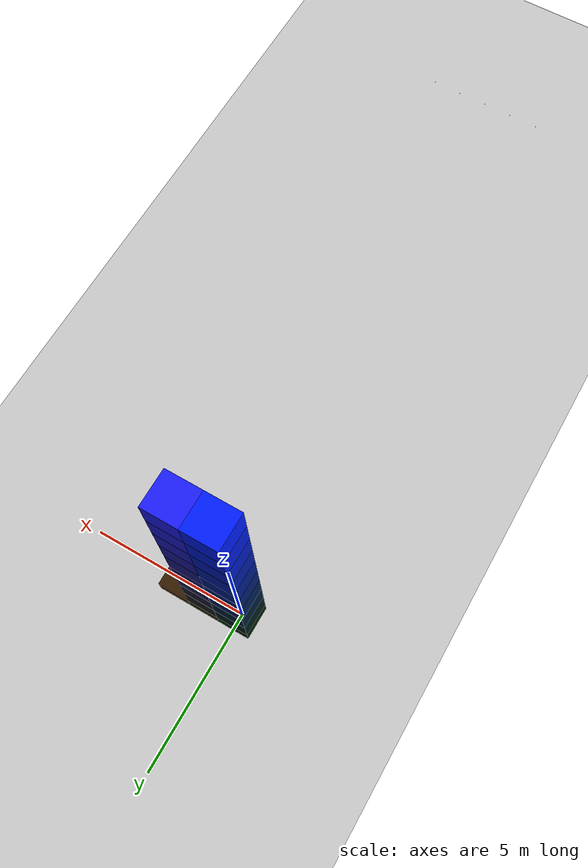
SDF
<sdf version="1.6">
 <world name="default">
  <model name="ground_plane">
   <static>true</static>
   <link name="link">
    <collision name="collision"><geometry><plane><normal>0 0 1</normal></plane></geometry></collision>
    <visual name="visual">
     <geometry><plane><normal>0 0 1</normal><size>100 100</size></plane></geometry>
     <material>
      <ambient>0.8 0.8 0.8 1</ambient>
      <diffuse>0.8 0.8 0.8 1</diffuse>
      <specular>0.8 0.8 0.8 1</specular>
     </material>
    </visual>
   </link>
  </model>
  <model name="camera_0">
   <static>true</static>
   <pose>0.0 -20 0 0 0 1.5707</pose>
   <link name="base_link">
    <visual name="camera_visual"><geometry><box><size>0.02 0.02 0.02</size></box></geometry></visual>
    <sensor name="camera_sensor_0" type="camera">
     <always_on>1</always_on>
     <update_rate>20</update_rate>
     <camera name="camera_front">
      <pose>0 0 0 0 -1.5707 1.5707</pose>
      <horizontal_fov>1.0472</horizontal_fov>
      <distortion><k1>0.0</k1><k2>0.0</k2><k3>0.0</k3><p1>0.0</p1><p2>0.0</p2><center>0.5 0.5</center></distortion>
      <image><width>1280</width><height>960</height><format>R8G8B8</format></image>
      <clip><near>0.01</near><far>300</far></clip>
      <noise><type>gaussian</type><mean>0</mean><stddev>0.007</stddev></noise>
     </camera>
    </sensor>
   </link>
  </model>
  <model name="camera_1">
   <static>true</static>
   <pose>1.0 -20 0 0 0 1.5707</pose>
   <link name="base_link">
    <visual name="camera_visual"><geometry><box><size>0.02 0.02 0.02</size></box></geometry></visual>
    <sensor name="camera_sensor_1" type="camera">
     <always_on>1</always_on>
     <update_rate>20</update_rate>
     <camera name="camera_front">
      <pose>0 0 0 0 -1.5707 1.5707</pose>
      <horizontal_fov>1.0472</horizontal_fov>
      <distortion><k1>0.0</k1><k2>0.0</k2><k3>0.0</k3><p1>0.0</p1><p2>0.0</p2><center>0.5 0.5</center></distortion>
      <image><width>1280</width><height>960</height><format>R8G8B8</format></image>
      <clip><near>0.01</near><far>300</far></clip>
      <noise><type>gaussian</type><mean>0</mean><stddev>0.007</stddev></noise>
     </camera>
    </sensor>
   </link>
  </model>
  <model name="camera_2">
   <static>true</static>
   <pose>2.0 -20 0 0 0 1.5707</pose>
   <link name="base_link">
    <visual name="camera_visual"><geometry><box><size>0.02 0.02 0.02</size></box></geometry></visual>
    <sensor name="camera_sensor_2" type="camera">
     <always_on>1</always_on>
     <update_rate>20</update_rate>
     <camera name="camera_front">
      <pose>0 0 0 0 -1.5707 1.5707</pose>
      <horizontal_fov>1.0472</horizontal_fov>
      <distortion><k1>0.0</k1><k2>0.0</k2><k3>0.0</k3><p1>0.0</p1><p2>0.0</p2><center>0.5 0.5</center></distortion>
      <image><width>1280</width><height>960</height><format>R8G8B8</format></image>
      <clip><near>0.01</near><far>300</far></clip>
      <noise><type>gaussian</type><mean>0</mean><stddev>0.007</stddev></noise>
     </camera>
    </sensor>
   </link>
  </model>
  <model name="camera_3">
   <static>true</static>
   <pose>3.0 -20 0 0 0 1.5707</pose>
   <link name="base_link">
    <visual name="camera_visual"><geometry><box><size>0.02 0.02 0.02</size></box></geometry></visual>
    <sensor name="camera_sensor_3" type="camera">
     <always_on>1</always_on>
     <update_rate>20</update_rate>
     <camera name="camera_front">
      <pose>0 0 0 0 -1.5707 1.5707</pose>
      <horizontal_fov>1.0472</horizontal_fov>
      <distortion><k1>0.0</k1><k2>0.0</k2><k3>0.0</k3><p1>0.0</p1><p2>0.0</p2><center>0.5 0.5</center></distortion>
      <image><width>1280</width><height>960</height><format>R8G8B8</format></image>
      <clip><near>0.01</near><far>300</far></clip>
      <noise><type>gaussian</type><mean>0</mean><stddev>0.007</stddev></noise>
     </camera>
    </sensor>
   </link>
  </model>
  <model name="camera_4">
   <static>true</static>
   <pose>4.0 -20 0 0 0 1.5707</pose>
   <link name="base_link">
    <visual name="camera_visual"><geometry><box><size>0.02 0.02 0.02</size></box></geometry></visual>
    <sensor name="camera_sensor_4" type="camera">
     <always_on>1</always_on>
     <update_rate>20</update_rate>
     <camera name="camera_front">
      <pose>0 0 0 0 -1.5707 1.5707</pose>
      <horizontal_fov>1.0472</horizontal_fov>
      <distortion><k1>0.0</k1><k2>0.0</k2><k3>0.0</k3><p1>0.0</p1><p2>0.0</p2><center>0.5 0.5</center></distortion>
      <image><width>1280</width><height>960</height><format>R8G8B8</format></image>
      <clip><near>0.01</near><far>300</far></clip>
      <noise><type>gaussian</type><mean>0</mean><stddev>0.007</stddev></noise>
     </camera>
    </sensor>
   </link>
  </model>
  <model name="model_0_1.0_0">
   <static>true</static>
   <link name="box_link">
    <inertial>
     <inertia><ixx>1</ixx><ixy>0</ixy><ixz>0</ixz><iyy>1</iyy><iyz>0</iyz><izz>1</izz></inertia>
     <mass>5.0</mass>
    </inertial>
    <collision name="box_collision"><geometry><box><size>1 1 1</size></box></geometry></collision>
    <visual name="box_visual">
     <geometry><box><size>1 1 1</size></box></geometry>
     <material>
      <ambient>0.0
              0.1111111111111111
              0.0
              1</ambient>
      <diffuse>0.0
              0.1111111111111111
              0.0
              1</diffuse>
      <specular>0.0
              0.1111111111111111
              0.0
              1</specular>
     </material>
    </visual>
   </link>
  </model>
  <model name="model_0_1.0_1">
   <static>true</static>
   <pose>0.0
        0.0
        1.0
        0.0
        0.0
        0.0</pose>
   <link name="box_link">
    <inertial>
     <inertia><ixx>1</ixx><ixy>0</ixy><ixz>0</ixz><iyy>1</iyy><iyz>0</iyz><izz>1</izz></inertia>
     <mass>5.0</mass>
    </inertial>
    <collision name="box_collision"><geometry><box><size>1 1 1</size></box></geometry></collision>
    <visual name="box_visual">
     <geometry><box><size>1 1 1</size></box></geometry>
     <material>
      <ambient>0.0
              0.1111111111111111
              0.1111111111111111
              1</ambient>
      <diffuse>0.0
              0.1111111111111111
              0.1111111111111111
              1</diffuse>
      <specular>0.0
              0.1111111111111111
              0.1111111111111111
              1</specular>
     </material>
    </visual>
   </link>
  </model>
  <model name="model_0_1.0_2">
   <static>true</static>
   <pose>0.0
        0.0
        2.0
        0.0
        0.0
        0.0</pose>
   <link name="box_link">
    <inertial>
     <inertia><ixx>1</ixx><ixy>0</ixy><ixz>0</ixz><iyy>1</iyy><iyz>0</iyz><izz>1</izz></inertia>
     <mass>5.0</mass>
    </inertial>
    <collision name="box_collision"><geometry><box><size>1 1 1</size></box></geometry></collision>
    <visual name="box_visual">
     <geometry><box><size>1 1 1</size></box></geometry>
     <material>
      <ambient>0.0
              0.1111111111111111
              0.2222222222222222
              1</ambient>
      <diffuse>0.0
              0.1111111111111111
              0.2222222222222222
              1</diffuse>
      <specular>0.0
              0.1111111111111111
              0.2222222222222222
              1</specular>
     </material>
    </visual>
   </link>
  </model>
  <model name="model_0_1.0_3">
   <static>true</static>
   <pose>0.0
        0.0
        3.0
        0.0
        0.0
        0.0</pose>
   <link name="box_link">
    <inertial>
     <inertia><ixx>1</ixx><ixy>0</ixy><ixz>0</ixz><iyy>1</iyy><iyz>0</iyz><izz>1</izz></inertia>
     <mass>5.0</mass>
    </inertial>
    <collision name="box_collision"><geometry><box><size>1 1 1</size></box></geometry></collision>
    <visual name="box_visual">
     <geometry><box><size>1 1 1</size></box></geometry>
     <material>
      <ambient>0.0
              0.1111111111111111
              0.3333333333333333
              1</ambient>
      <diffuse>0.0
              0.1111111111111111
              0.3333333333333333
              1</diffuse>
      <specular>0.0
              0.1111111111111111
              0.3333333333333333
              1</specular>
     </material>
    </visual>
   </link>
  </model>
  <model name="model_0_1.0_4">
   <static>true</static>
   <pose>0.0
        0.0
        4.0
        0.0
        0.0
        0.0</pose>
   <link name="box_link">
    <inertial>
     <inertia><ixx>1</ixx><ixy>0</ixy><ixz>0</ixz><iyy>1</iyy><iyz>0</iyz><izz>1</izz></inertia>
     <mass>5.0</mass>
    </inertial>
    <collision name="box_collision"><geometry><box><size>1 1 1</size></box></geometry></collision>
    <visual name="box_visual">
     <geometry><box><size>1 1 1</size></box></geometry>
     <material>
      <ambient>0.0
              0.1111111111111111
              0.4444444444444444
              1</ambient>
      <diffuse>0.0
              0.1111111111111111
              0.4444444444444444
              1</diffuse>
      <specular>0.0
              0.1111111111111111
              0.4444444444444444
              1</specular>
     </material>
    </visual>
   </link>
  </model>
  <model name="model_0_1.0_5">
   <static>true</static>
   <pose>0.0
        0.0
        5.0
        0.0
        0.0
        0.0</pose>
   <link name="box_link">
    <inertial>
     <inertia><ixx>1</ixx><ixy>0</ixy><ixz>0</ixz><iyy>1</iyy><iyz>0</iyz><izz>1</izz></inertia>
     <mass>5.0</mass>
    </inertial>
    <collision name="box_collision"><geometry><box><size>1 1 1</size></box></geometry></collision>
    <visual name="box_visual">
     <geometry><box><size>1 1 1</size></box></geometry>
     <material>
      <ambient>0.0
              0.1111111111111111
              0.5555555555555556
              1</ambient>
      <diffuse>0.0
              0.1111111111111111
              0.5555555555555556
              1</diffuse>
      <specular>0.0
              0.1111111111111111
              0.5555555555555556
              1</specular>
     </material>
    </visual>
   </link>
  </model>
  <model name="model_0_1.0_6">
   <static>true</static>
   <pose>0.0
        0.0
        6.0
        0.0
        0.0
        0.0</pose>
   <link name="box_link">
    <inertial>
     <inertia><ixx>1</ixx><ixy>0</ixy><ixz>0</ixz><iyy>1</iyy><iyz>0</iyz><izz>1</izz></inertia>
     <mass>5.0</mass>
    </inertial>
    <collision name="box_collision"><geometry><box><size>1 1 1</size></box></geometry></collision>
    <visual name="box_visual">
     <geometry><box><size>1 1 1</size></box></geometry>
     <material>
      <ambient>0.0
              0.1111111111111111
              0.6666666666666666
              1</ambient>
      <diffuse>0.0
              0.1111111111111111
              0.6666666666666666
              1</diffuse>
      <specular>0.0
              0.1111111111111111
              0.6666666666666666
              1</specular>
     </material>
    </visual>
   </link>
  </model>
  <model name="model_0_1.0_7">
   <static>true</static>
   <pose>0.0
        0.0
        7.0
        0.0
        0.0
        0.0</pose>
   <link name="box_link">
    <inertial>
     <inertia><ixx>1</ixx><ixy>0</ixy><ixz>0</ixz><iyy>1</iyy><iyz>0</iyz><izz>1</izz></inertia>
     <mass>5.0</mass>
    </inertial>
    <collision name="box_collision"><geometry><box><size>1 1 1</size></box></geometry></collision>
    <visual name="box_visual">
     <geometry><box><size>1 1 1</size></box></geometry>
     <material>
      <ambient>0.0
              0.1111111111111111
              0.7777777777777778
              1</ambient>
      <diffuse>0.0
              0.1111111111111111
              0.7777777777777778
              1</diffuse>
      <specular>0.0
              0.1111111111111111
              0.7777777777777778
              1</specular>
     </material>
    </visual>
   </link>
  </model>
  <model name="model_0_1.0_8">
   <static>true</static>
   <pose>0.0
        0.0
        8.0
        0.0
        0.0
        0.0</pose>
   <link name="box_link">
    <inertial>
     <inertia><ixx>1</ixx><ixy>0</ixy><ixz>0</ixz><iyy>1</iyy><iyz>0</iyz><izz>1</izz></inertia>
     <mass>5.0</mass>
    </inertial>
    <collision name="box_collision"><geometry><box><size>1 1 1</size></box></geometry></collision>
    <visual name="box_visual">
     <geometry><box><size>1 1 1</size></box></geometry>
     <material>
      <ambient>0.0
              0.1111111111111111
              0.8888888888888888
              1</ambient>
      <diffuse>0.0
              0.1111111111111111
              0.8888888888888888
              1</diffuse>
      <specular>0.0
              0.1111111111111111
              0.8888888888888888
              1</specular>
     </material>
    </visual>
   </link>
  </model>
  <model name="model_0_1.0_9">
   <static>true</static>
   <pose>0.0
        0.0
        9.0
        0.0
        0.0
        0.0</pose>
   <link name="box_link">
    <inertial>
     <inertia><ixx>1</ixx><ixy>0</ixy><ixz>0</ixz><iyy>1</iyy><iyz>0</iyz><izz>1</izz></inertia>
     <mass>5.0</mass>
    </inertial>
    <collision name="box_collision"><geometry><box><size>1 1 1</size></box></geometry></collision>
    <visual name="box_visual">
     <geometry><box><size>1 1 1</size></box></geometry>
     <material>
      <ambient>0.0
              0.1111111111111111
              1.0
              1</ambient>
      <diffuse>0.0
              0.1111111111111111
              1.0
              1</diffuse>
      <specular>0.0
              0.1111111111111111
              1.0
              1</specular>
     </material>
    </visual>
   </link>
  </model>
  <model name="model_1_1.0_0">
   <static>true</static>
   <pose>1.0
        0.0
        0.0
        0.0
        0.0
        0.0</pose>
   <link name="box_link">
    <inertial>
     <inertia><ixx>1</ixx><ixy>0</ixy><ixz>0</ixz><iyy>1</iyy><iyz>0</iyz><izz>1</izz></inertia>
     <mass>5.0</mass>
    </inertial>
    <collision name="box_collision"><geometry><box><size>1 1 1</size></box></geometry></collision>
    <visual name="box_visual">
     <geometry><box><size>1 1 1</size></box></geometry>
     <material>
      <ambient>0.1111111111111111
              0.1111111111111111
              0.0
              1</ambient>
      <diffuse>0.1111111111111111
              0.1111111111111111
              0.0
              1</diffuse>
      <specular>0.1111111111111111
              0.1111111111111111
              0.0
              1</specular>
     </material>
    </visual>
   </link>
  </model>
  <model name="model_1_1.0_1">
   <static>true</static>
   <pose>1.0
        0.0
        1.0
        0.0
        0.0
        0.0</pose>
   <link name="box_link">
    <inertial>
     <inertia><ixx>1</ixx><ixy>0</ixy><ixz>0</ixz><iyy>1</iyy><iyz>0</iyz><izz>1</izz></inertia>
     <mass>5.0</mass>
    </inertial>
    <collision name="box_collision"><geometry><box><size>1 1 1</size></box></geometry></collision>
    <visual name="box_visual">
     <geometry><box><size>1 1 1</size></box></geometry>
     <material>
      <ambient>0.1111111111111111
              0.1111111111111111
              0.1111111111111111
              1</ambient>
      <diffuse>0.1111111111111111
              0.1111111111111111
              0.1111111111111111
              1</diffuse>
      <specular>0.1111111111111111
              0.1111111111111111
              0.1111111111111111
              1</specular>
     </material>
    </visual>
   </link>
  </model>
  <model name="model_1_1.0_2">
   <static>true</static>
   <pose>1.0
        0.0
        2.0
        0.0
        0.0
        0.0</pose>
   <link name="box_link">
    <inertial>
     <inertia><ixx>1</ixx><ixy>0</ixy><ixz>0</ixz><iyy>1</iyy><iyz>0</iyz><izz>1</izz></inertia>
     <mass>5.0</mass>
    </inertial>
    <collision name="box_collision"><geometry><box><size>1 1 1</size></box></geometry></collision>
    <visual name="box_visual">
     <geometry><box><size>1 1 1</size></box></geometry>
     <material>
      <ambient>0.1111111111111111
              0.1111111111111111
              0.2222222222222222
              1</ambient>
      <diffuse>0.1111111111111111
              0.1111111111111111
              0.2222222222222222
              1</diffuse>
      <specular>0.1111111111111111
              0.1111111111111111
              0.2222222222222222
              1</specular>
     </material>
    </visual>
   </link>
  </model>
  <model name="model_1_1.0_3">
   <static>true</static>
   <pose>1.0
        0.0
        3.0
        0.0
        0.0
        0.0</pose>
   <link name="box_link">
    <inertial>
     <inertia><ixx>1</ixx><ixy>0</ixy><ixz>0</ixz><iyy>1</iyy><iyz>0</iyz><izz>1</izz></inertia>
     <mass>5.0</mass>
    </inertial>
    <collision name="box_collision"><geometry><box><size>1 1 1</size></box></geometry></collision>
    <visual name="box_visual">
     <geometry><box><size>1 1 1</size></box></geometry>
     <material>
      <ambient>0.1111111111111111
              0.1111111111111111
              0.3333333333333333
              1</ambient>
      <diffuse>0.1111111111111111
              0.1111111111111111
              0.3333333333333333
              1</diffuse>
      <specular>0.1111111111111111
              0.1111111111111111
              0.3333333333333333
              1</specular>
     </material>
    </visual>
   </link>
  </model>
  <model name="model_1_1.0_4">
   <static>true</static>
   <pose>1.0
        0.0
        4.0
        0.0
        0.0
        0.0</pose>
   <link name="box_link">
    <inertial>
     <inertia><ixx>1</ixx><ixy>0</ixy><ixz>0</ixz><iyy>1</iyy><iyz>0</iyz><izz>1</izz></inertia>
     <mass>5.0</mass>
    </inertial>
    <collision name="box_collision"><geometry><box><size>1 1 1</size></box></geometry></collision>
    <visual name="box_visual">
     <geometry><box><size>1 1 1</size></box></geometry>
     <material>
      <ambient>0.1111111111111111
              0.1111111111111111
              0.4444444444444444
              1</ambient>
      <diffuse>0.1111111111111111
              0.1111111111111111
              0.4444444444444444
              1</diffuse>
      <specular>0.1111111111111111
              0.1111111111111111
              0.4444444444444444
              1</specular>
     </material>
    </visual>
   </link>
  </model>
  <model name="model_1_1.0_5">
   <static>true</static>
   <pose>1.0
        0.0
        5.0
        0.0
        0.0
        0.0</pose>
   <link name="box_link">
    <inertial>
     <inertia><ixx>1</ixx><ixy>0</ixy><ixz>0</ixz><iyy>1</iyy><iyz>0</iyz><izz>1</izz></inertia>
     <mass>5.0</mass>
    </inertial>
    <collision name="box_collision"><geometry><box><size>1 1 1</size></box></geometry></collision>
    <visual name="box_visual">
     <geometry><box><size>1 1 1</size></box></geometry>
     <material>
      <ambient>0.1111111111111111
              0.1111111111111111
              0.5555555555555556
              1</ambient>
      <diffuse>0.1111111111111111
              0.1111111111111111
              0.5555555555555556
              1</diffuse>
      <specular>0.1111111111111111
              0.1111111111111111
              0.5555555555555556
              1</specular>
     </material>
    </visual>
   </link>
  </model>
  <model name="model_1_1.0_6">
   <static>true</static>
   <pose>1.0
        0.0
        6.0
        0.0
        0.0
        0.0</pose>
   <link name="box_link">
    <inertial>
     <inertia><ixx>1</ixx><ixy>0</ixy><ixz>0</ixz><iyy>1</iyy><iyz>0</iyz><izz>1</izz></inertia>
     <mass>5.0</mass>
    </inertial>
    <collision name="box_collision"><geometry><box><size>1 1 1</size></box></geometry></collision>
    <visual name="box_visual">
     <geometry><box><size>1 1 1</size></box></geometry>
     <material>
      <ambient>0.1111111111111111
              0.1111111111111111
              0.6666666666666666
              1</ambient>
      <diffuse>0.1111111111111111
              0.1111111111111111
              0.6666666666666666
              1</diffuse>
      <specular>0.1111111111111111
              0.1111111111111111
              0.6666666666666666
              1</specular>
     </material>
    </visual>
   </link>
  </model>
  <model name="model_1_1.0_7">
   <static>true</static>
   <pose>1.0
        0.0
        7.0
        0.0
        0.0
        0.0</pose>
   <link name="box_link">
    <inertial>
     <inertia><ixx>1</ixx><ixy>0</ixy><ixz>0</ixz><iyy>1</iyy><iyz>0</iyz><izz>1</izz></inertia>
     <mass>5.0</mass>
    </inertial>
    <collision name="box_collision"><geometry><box><size>1 1 1</size></box></geometry></collision>
    <visual name="box_visual">
     <geometry><box><size>1 1 1</size></box></geometry>
     <material>
      <ambient>0.1111111111111111
              0.1111111111111111
              0.7777777777777778
              1</ambient>
      <diffuse>0.1111111111111111
              0.1111111111111111
              0.7777777777777778
              1</diffuse>
      <specular>0.1111111111111111
              0.1111111111111111
              0.7777777777777778
              1</specular>
     </material>
    </visual>
   </link>
  </model>
  <model name="model_1_1.0_8">
   <static>true</static>
   <pose>1.0
        0.0
        8.0
        0.0
        0.0
        0.0</pose>
   <link name="box_link">
    <inertial>
     <inertia><ixx>1</ixx><ixy>0</ixy><ixz>0</ixz><iyy>1</iyy><iyz>0</iyz><izz>1</izz></inertia>
     <mass>5.0</mass>
    </inertial>
    <collision name="box_collision"><geometry><box><size>1 1 1</size></box></geometry></collision>
    <visual name="box_visual">
     <geometry><box><size>1 1 1</size></box></geometry>
     <material>
      <ambient>0.1111111111111111
              0.1111111111111111
              0.8888888888888888
              1</ambient>
      <diffuse>0.1111111111111111
              0.1111111111111111
              0.8888888888888888
              1</diffuse>
      <specular>0.1111111111111111
              0.1111111111111111
              0.8888888888888888
              1</specular>
     </material>
    </visual>
   </link>
  </model>
  <model name="model_1_1.0_9">
   <static>true</static>
   <pose>1.0
        0.0
        9.0
        0.0
        0.0
        0.0</pose>
   <link name="box_link">
    <inertial>
     <inertia><ixx>1</ixx><ixy>0</ixy><ixz>0</ixz><iyy>1</iyy><iyz>0</iyz><izz>1</izz></inertia>
     <mass>5.0</mass>
    </inertial>
    <collision name="box_collision"><geometry><box><size>1 1 1</size></box></geometry></collision>
    <visual name="box_visual">
     <geometry><box><size>1 1 1</size></box></geometry>
     <material>
      <ambient>0.1111111111111111
              0.1111111111111111
              1.0
              1</ambient>
      <diffuse>0.1111111111111111
              0.1111111111111111
              1.0
              1</diffuse>
      <specular>0.1111111111111111
              0.1111111111111111
              1.0
              1</specular>
     </material>
    </visual>
   </link>
  </model>
  <model name="model_2_1.0_0">
   <static>true</static>
   <pose>2.0
        0.0
        0.0
        0.0
        0.0
        0.0</pose>
   <link name="box_link">
    <inertial>
     <inertia><ixx>1</ixx><ixy>0</ixy><ixz>0</ixz><iyy>1</iyy><iyz>0</iyz><izz>1</izz></inertia>
     <mass>5.0</mass>
    </inertial>
    <collision name="box_collision"><geometry><box><size>1 1 1</size></box></geometry></collision>
    <visual name="box_visual">
     <geometry><box><size>1 1 1</size></box></geometry>
     <material>
      <ambient>0.2222222222222222
              0.1111111111111111
              0.0
              1</ambient>
      <diffuse>0.2222222222222222
              0.1111111111111111
              0.0
              1</diffuse>
      <specular>0.2222222222222222
              0.1111111111111111
              0.0
              1</specular>
     </material>
    </visual>
   </link>
  </model>
 </world>
</sdf>
